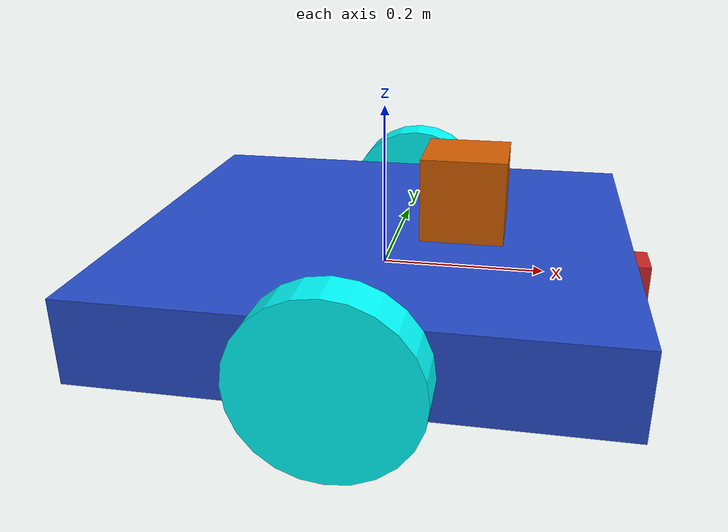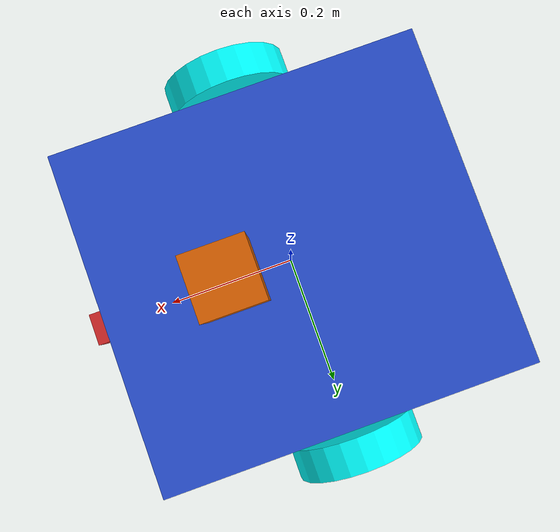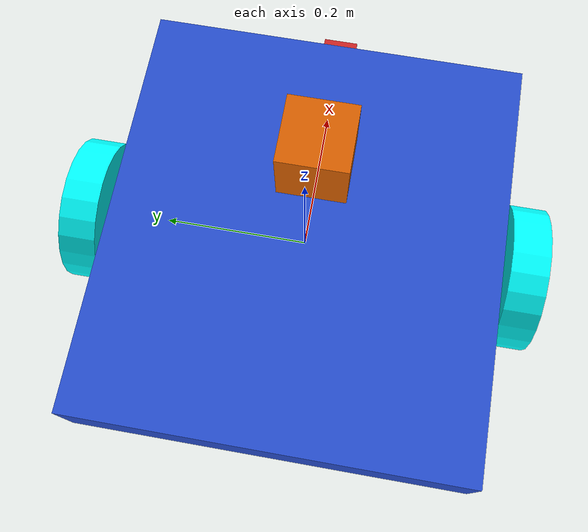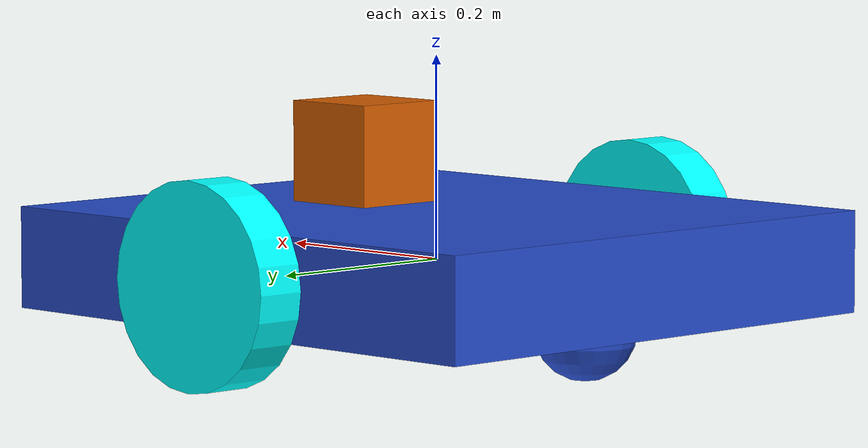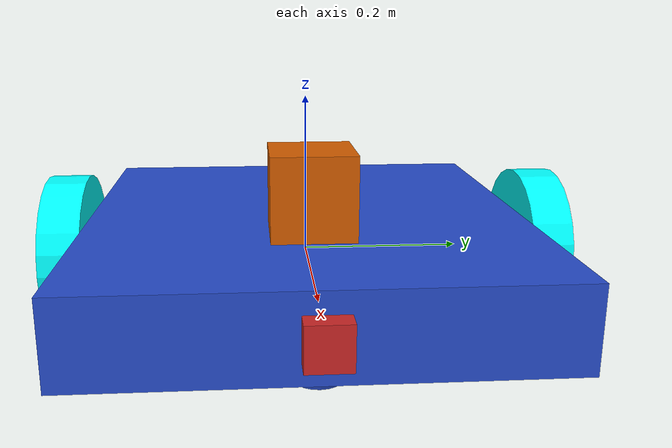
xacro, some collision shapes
<?xml version='1.0'?>

<robot name="my_robot" xmlns:xacro="http://www.ros.org/wiki/xacro">
<xacro:include filename="$(find my_robot)/urdf/my_robot.gazebo" />
  <link name="robot_footprint"></link>

  <joint name="robot_footprint_joint" type="fixed">
    <origin xyz="0 0 0" rpy="0 0 0" />
    <parent link="robot_footprint"/>
    <child link="chassis" />
  </joint>

  <link name='chassis'>
    <pose>0 0 0.1 0 0 0</pose>

    <inertial>
      <mass value="15.0"/>
      <origin xyz="0.0 0 0" rpy=" 0 0 0"/>
      <inertia
          ixx="0.1" ixy="0" ixz="0"
          iyy="0.1" iyz="0"
          izz="0.1"
      />
    </inertial>

    <collision name='collision'>
      <origin xyz="0 0 0" rpy=" 0 0 0"/>
      <geometry>
        <cylinder radius="0.3" length="0.05"/>
      </geometry>

    </collision>

    <visual name='chassis_visual'>
      <origin xyz="0 0 0" rpy=" 0 0 0"/>
      <geometry>
        <box size="0.6 0.55 0.1" />
      </geometry>

    </visual>

    <collision name='back_caster_collision'>
      <origin xyz="-0.2 0 -0.05" rpy=" 0 0 0"/>
      <geometry>
        <sphere radius="0.0499"/>
      </geometry>
    </collision>

    <visual name='back_caster_visual'>
      <origin xyz="-0.2 0 -0.05" rpy=" 0 0 0"/>
      <geometry>
        <sphere radius="0.05"/>
      </geometry>
    </visual>

    <collision name='front_caster_collision'>
      <origin xyz="0.2 0 -0.05" rpy=" 0 0 0"/>
      <geometry>
        <sphere radius="0.0499"/>
      </geometry>
    </collision>

    <visual name='front_caster_visual'>
      <origin xyz="0.2 0 -0.05" rpy=" 0 0 0"/>
      <geometry>
        <sphere radius="0.05"/>
      </geometry>
    </visual>

  </link>

 <link name="left_wheel">
   <inertial>
     <origin xyz="0 0 0" rpy="0 1.5707 1.5707"/>
     <mass value="5"/>
     <inertia ixx="0.1"  ixy="0"  ixz="0" iyy="0.1" iyz="0" izz="0.1" />
   </inertial>

   <visual>
     <origin xyz="0 0 0" rpy="0 1.5707 1.5707"/>
     <geometry>
       <cylinder radius="0.10" length="0.05"/>
     </geometry>
     <material name="Cyan">
       <color rgba="0 1.0 1.0 1.0"/>
     </material>
   </visual>

   <collision>
     <origin xyz="0 0 0" rpy="0 1.5707 1.5707"/>
     <geometry>
       <cylinder radius="0.10" length="0.05"/>
     </geometry>
   </collision>
 </link>

 <link name="right_wheel">
   <inertial>
     <origin xyz="0 0 0" rpy="0 1.5707 1.5707"/>
     <mass value="5"/>
     <inertia ixx="0.1"  ixy="0"  ixz="0" iyy="0.1" iyz="0" izz="0.1" />
   </inertial>

   <visual>
     <origin xyz="0 0 0" rpy="0 1.5707 1.5707"/>
     <geometry>
       <cylinder radius="0.10" length="0.05"/>
     </geometry>
     <material name="Cyan">
       <color rgba="0 1.0 1.0 1.0"/>
     </material>
   </visual>

   <collision>
     <origin xyz="0 0 0" rpy="0 1.5707 1.5707"/>
     <geometry>
       <cylinder radius="0.10" length="0.05"/>
     </geometry>
   </collision>
 </link>

  <joint type="continuous" name="left_wheel_hinge">
    <origin xyz="0 0.3 0" rpy="0 0 0"/>
    <child link="left_wheel"/>
    <parent link="chassis"/>
    <axis xyz="0 1 0" rpy="0 0 0"/>
    <limit effort="10000" velocity="1000"/>
    <dynamics damping="1.0" friction="1.0"/>
  </joint>

  <joint type="continuous" name="right_wheel_hinge">
    <origin xyz="0 -0.3 0" rpy="0 0 0"/>
    <child link="right_wheel"/>
    <parent link="chassis"/>
    <axis xyz="0 1 0" rpy="0 0 0"/>
    <limit effort="10000" velocity="1000"/>
    <dynamics damping="1.0" friction="1.0"/>
  </joint>

<link name="camera">
   <inertial>
     <origin xyz="0 0 0" rpy="0 0 0"/>
     <mass value="0.1"/>
     <inertia ixx="1e-6"  ixy="0"  ixz="0" iyy="1e-6" iyz="0" izz="1e-6" />
   </inertial>

   <visual>
     <origin xyz="0 0 0" rpy="0 0 0"/>
     <geometry>
       <box size="0.05 0.05 0.05" />
     </geometry>
     <material name="red" />
   </visual>

   <collision>
     <origin xyz="0 0 0" rpy="0 0 0"/>
     <geometry>
       <box size="0.05 0.05 0.05" />
     </geometry>
   </collision>
 </link>

  <joint type="fixed" name="camera_joint">
    <origin xyz="0.3 0 0" rpy="0 0 0"/>
    <child link="camera"/>
    <parent link="chassis"/>
    <axis xyz="0 1 0" rpy="0 0 0"/>
  </joint>

<link name="hokuyo">
   <inertial>
     <origin xyz="0 0 0" rpy="0 0 0"/>
     <mass value="1e-5"/>
     <inertia ixx="1e-6"  ixy="0"  ixz="0" iyy="1e-6" iyz="0" izz="1e-6" />
   </inertial>

   <visual>
     <origin xyz="0 0 0" rpy="0 0 0"/>
     <geometry>
       <mesh filename="package://my_robot/meshes/hokuyo.dae" />
     </geometry>

   </visual>

   <collision>
     <origin xyz="0 0 0" rpy="0 0 0"/>
     <geometry>
       <box size="0.1 0.1 0.1" />
     </geometry>
   </collision>
 </link>

  <joint type="fixed" name="hokuyo_joint">
    <origin xyz="0.10 0 0.1" rpy="0 0 0"/>
    <child link="hokuyo"/>
    <parent link="chassis"/>
    <axis xyz="0 1 0" rpy="0 0 0"/>
  </joint>

  <gazebo reference="chassis">
    <material>Gazebo/Blue</material>
  </gazebo>

  <gazebo reference="right_wheel">
    <material>Gazebo/Black</material>
  </gazebo>

  <gazebo reference="left_wheel">
    <material>Gazebo/Black</material>
  </gazebo>

  <gazebo reference="camera">
    <material>Gazebo/Red</material>
  </gazebo>

</robot>
